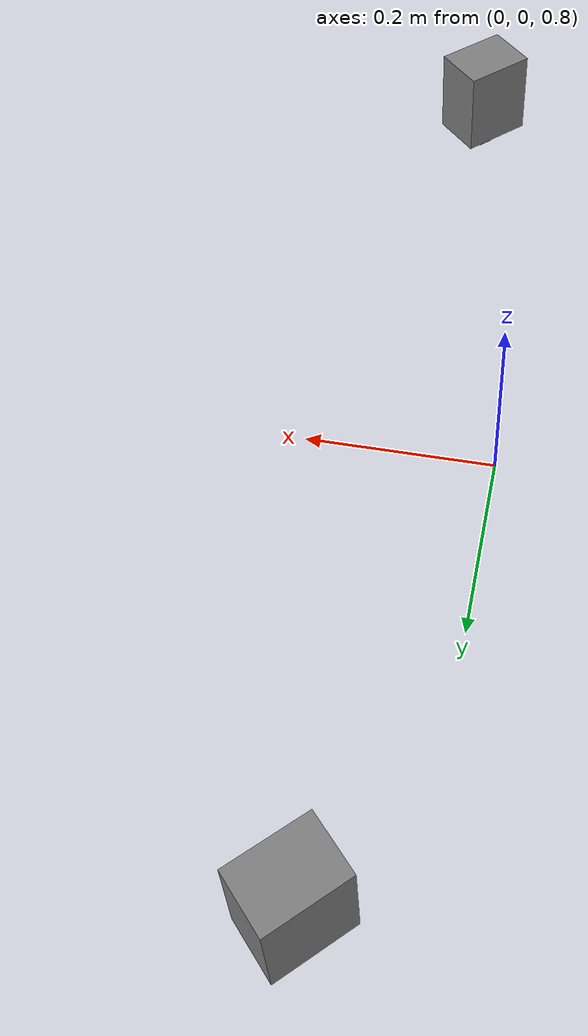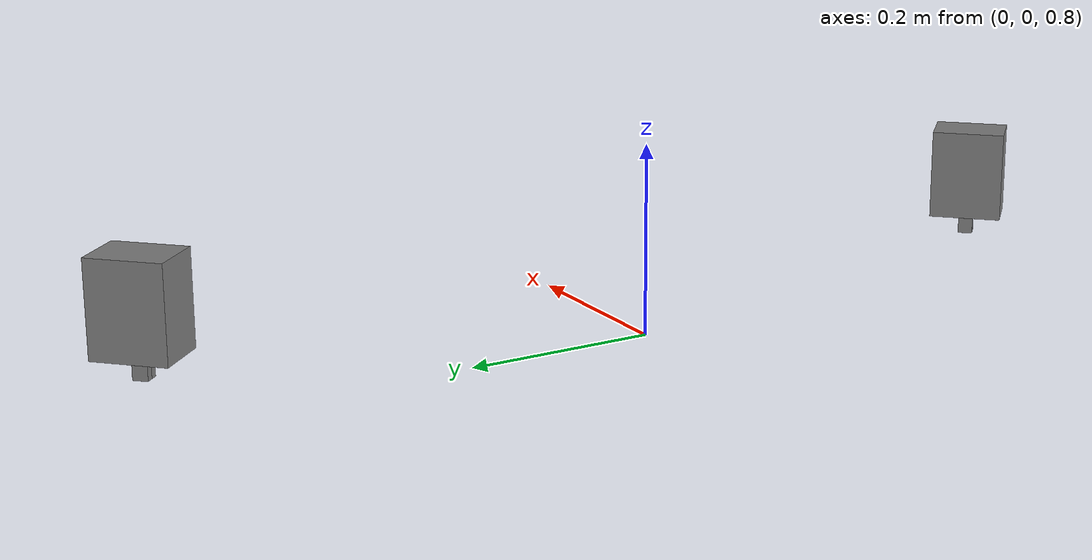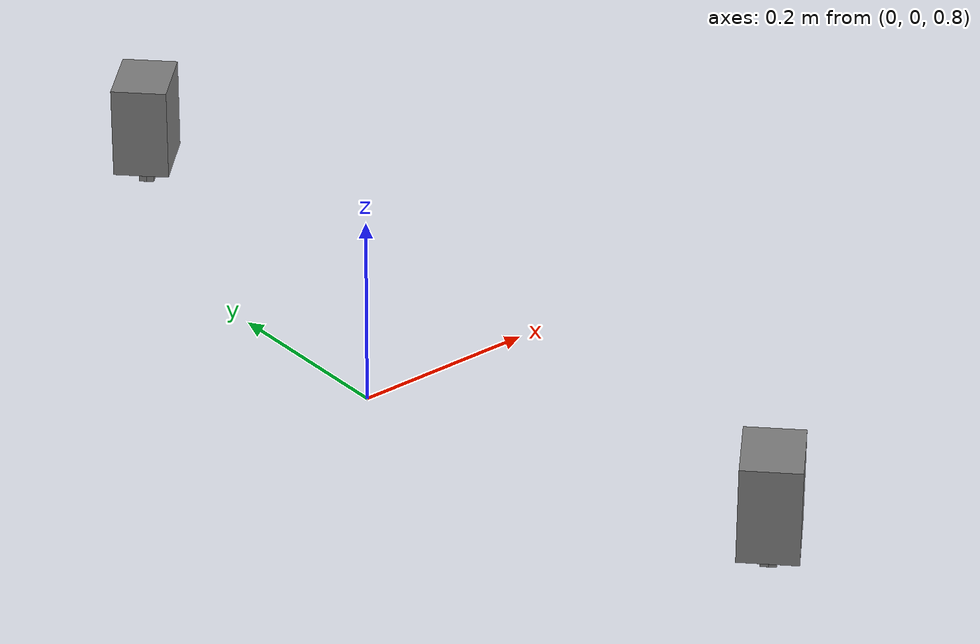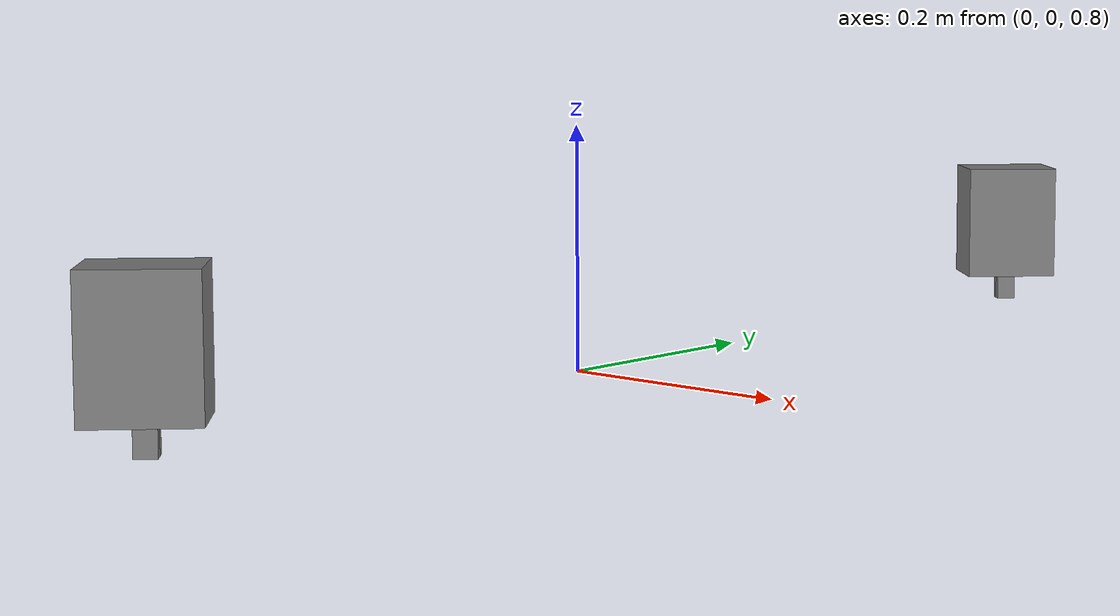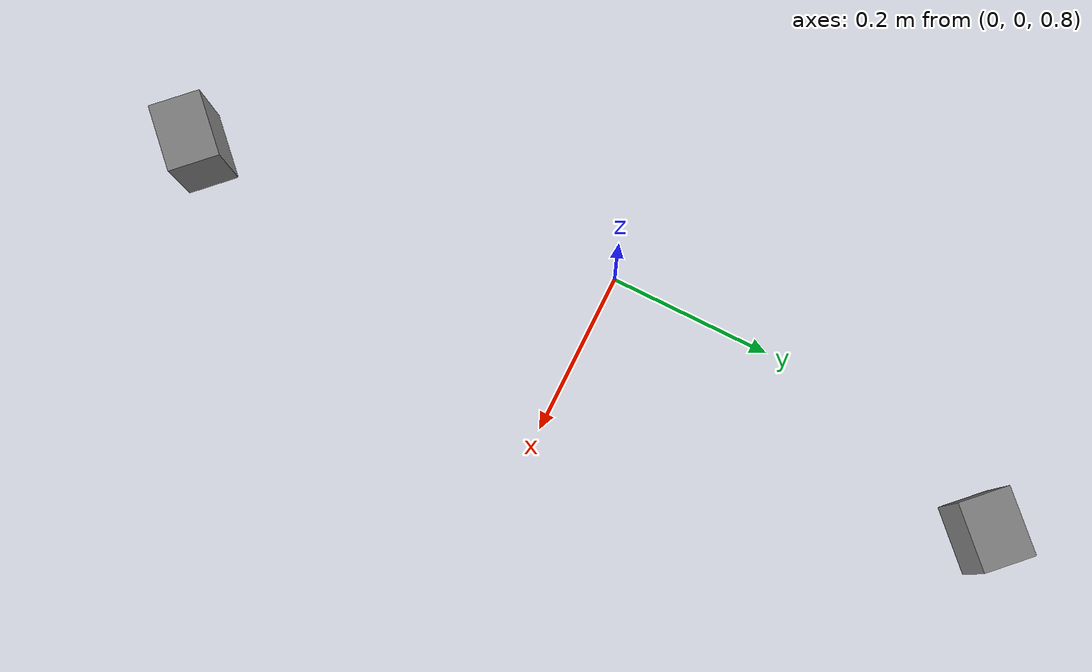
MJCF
<mujoco model="fr3_dual_mjx">
  <compiler angle="radian"/>

  <option integrator="implicitfast" timestep="0.004" iterations="4" ls_iterations="8"/>

  <default>
    <default class="fr3">
      <joint damping="0.21" armature="0.195" frictionloss="1.137"/>
      <position inheritrange="1"/>
    </default>
    <default class="gripper_finger">
      <joint axis="0 1 0" type="slide" range="0 0.04" damping="10" armature="0.1"/>
    </default>
  </default>

  <worldbody>

    <body name="base">

    <!-- ── Left arm  (y = +0.5) ─────────────────────────────────────────── -->
    <body name="left_base" pos="0 0.5 0" childclass="fr3">
      <body name="left_link0">
        <body name="left_link1" pos="0 0 0.333">
          <inertial pos="4.128e-07 -0.0181251 -0.0386036" quat="0.998098 -0.0605364 0.00380499 0.0110109"
            mass="2.92747" diaginertia="0.0239286 0.0227246 0.00610634"/>
          <joint name="left_joint1" axis="0 0 1" range="-2.7437 2.7437"/>
          <body name="left_link2" quat="1 -1 0 0">
            <inertial pos="0.00318289 -0.0743222 0.00881461" quat="0.502599 0.584437 -0.465998 0.434366"
              mass="2.93554" diaginertia="0.0629567 0.0411924 0.0246371"/>
            <joint name="left_joint2" axis="0 0 1" range="-1.7837 1.7837"/>
            <body name="left_link3" pos="0 -0.316 0" quat="1 1 0 0">
              <inertial pos="0.0407016 -0.00482006 -0.0289731" quat="0.921025 -0.244161 0.155272 0.260745"
                mass="2.2449" diaginertia="0.0267409 0.0189869 0.0171587"/>
              <joint name="left_joint3" axis="0 0 1" range="-2.9007 2.9007"/>
              <body name="left_link4" pos="0.0825 0 0" quat="1 1 0 0">
                <inertial pos="-0.0459101 0.0630493 -0.00851879" quat="0.438018 0.803311 0.00937812 0.403414"
                  mass="2.6156" diaginertia="0.05139 0.0372717 0.0160047"/>
                <joint name="left_joint4" axis="0 0 1" range="-3.0421 -0.1518"/>
                <body name="left_link5" pos="-0.0825 0.384 0" quat="1 -1 0 0">
                  <inertial pos="-0.00160396 0.0292536 -0.0972966" quat="0.919031 0.125604 0.0751531 -0.366003"
                    mass="2.32712" diaginertia="0.0579335 0.0449144 0.0130634"/>
                  <joint name="left_joint5" axis="0 0 1" range="-2.8065 2.8065"
                    armature="0.074" frictionloss="0.763"/>
                  <body name="left_link6" quat="1 1 0 0">
                    <inertial pos="0.0597131 -0.0410295 -0.0101693" quat="0.621301 0.552665 0.510011 0.220081"
                      mass="1.81704" diaginertia="0.0175039 0.0161123 0.00193529"/>
                    <joint name="left_joint6" axis="0 0 1" range="0.5445 4.5169"
                      armature="0.074" frictionloss="0.44"/>
                    <body name="left_link7" pos="0.088 0 0" quat="1 1 0 0">
                      <inertial pos="0.00452258 0.00862619 -0.0161633" quat="0.727579 0.0978688 -0.24906 0.63168"
                        mass="0.627143" diaginertia="0.000223836 0.000223642 5.64132e-07"/>
                      <joint name="left_joint7" axis="0 0 1" range="-3.0159 3.0159"
                        armature="0.074" frictionloss="0.248"/>
                      <body name="left_ee" pos="0 0 0.107" quat="-0.9238824 0 0 0.3826765"/>
                      <!-- ── Left Hand (MJX: primitives only) ────────────── -->
                      <body name="left_hand" pos="0 0 0.107" quat="0.9238795 0 0 -0.3826834">
                        <inertial mass="0.73" pos="-0.01 0 0.03" diaginertia="0.001 0.0025 0.0017"/>
                        <geom type="box" size="0.04 0.03 0.05" pos="0 0 0.035"/>
                        <site name="left_tcp" pos="0 0 0.1"/>
                        <body name="left_finger1" pos="0 0 0.0584">
                          <inertial mass="0.015" pos="0 0 0" diaginertia="2.375e-6 2.375e-6 7.5e-7"/>
                          <joint name="left_finger_joint1" class="gripper_finger"/>
                          <geom type="box" size="0.008 0.004 0.03" pos="0 0.004 0.02"/>
                        </body>
                        <body name="left_finger2" pos="0 0 0.0584" quat="0 0 0 1">
                          <inertial mass="0.015" pos="0 0 0" diaginertia="2.375e-6 2.375e-6 7.5e-7"/>
                          <joint name="left_finger_joint2" class="gripper_finger"/>
                          <geom type="box" size="0.008 0.004 0.03" pos="0 0.004 0.02"/>
                        </body>
                      </body>
                    </body>
                  </body>
                </body>
              </body>
            </body>
          </body>
        </body>
      </body>
    </body>

    <!-- ── Right arm  (y = -0.5) ─────────────────────────────────────────── -->
    <body name="right_base" pos="0 -0.5 0" childclass="fr3">
      <body name="right_link0">
        <body name="right_link1" pos="0 0 0.333">
          <inertial pos="4.128e-07 -0.0181251 -0.0386036" quat="0.998098 -0.0605364 0.00380499 0.0110109"
            mass="2.92747" diaginertia="0.0239286 0.0227246 0.00610634"/>
          <joint name="right_joint1" axis="0 0 1" range="-2.7437 2.7437"/>
          <body name="right_link2" quat="1 -1 0 0">
            <inertial pos="0.00318289 -0.0743222 0.00881461" quat="0.502599 0.584437 -0.465998 0.434366"
              mass="2.93554" diaginertia="0.0629567 0.0411924 0.0246371"/>
            <joint name="right_joint2" axis="0 0 1" range="-1.7837 1.7837"/>
            <body name="right_link3" pos="0 -0.316 0" quat="1 1 0 0">
              <inertial pos="0.0407016 -0.00482006 -0.0289731" quat="0.921025 -0.244161 0.155272 0.260745"
                mass="2.2449" diaginertia="0.0267409 0.0189869 0.0171587"/>
              <joint name="right_joint3" axis="0 0 1" range="-2.9007 2.9007"/>
              <body name="right_link4" pos="0.0825 0 0" quat="1 1 0 0">
                <inertial pos="-0.0459101 0.0630493 -0.00851879" quat="0.438018 0.803311 0.00937812 0.403414"
                  mass="2.6156" diaginertia="0.05139 0.0372717 0.0160047"/>
                <joint name="right_joint4" axis="0 0 1" range="-3.0421 -0.1518"/>
                <body name="right_link5" pos="-0.0825 0.384 0" quat="1 -1 0 0">
                  <inertial pos="-0.00160396 0.0292536 -0.0972966" quat="0.919031 0.125604 0.0751531 -0.366003"
                    mass="2.32712" diaginertia="0.0579335 0.0449144 0.0130634"/>
                  <joint name="right_joint5" axis="0 0 1" range="-2.8065 2.8065"
                    armature="0.074" frictionloss="0.763"/>
                  <body name="right_link6" quat="1 1 0 0">
                    <inertial pos="0.0597131 -0.0410295 -0.0101693" quat="0.621301 0.552665 0.510011 0.220081"
                      mass="1.81704" diaginertia="0.0175039 0.0161123 0.00193529"/>
                    <joint name="right_joint6" axis="0 0 1" range="0.5445 4.5169"
                      armature="0.074" frictionloss="0.44"/>
                    <body name="right_link7" pos="0.088 0 0" quat="1 1 0 0">
                      <inertial pos="0.00452258 0.00862619 -0.0161633" quat="0.727579 0.0978688 -0.24906 0.63168"
                        mass="0.627143" diaginertia="0.000223836 0.000223642 5.64132e-07"/>
                      <joint name="right_joint7" axis="0 0 1" range="-3.0159 3.0159"
                        armature="0.074" frictionloss="0.248"/>
                      <body name="right_ee" pos="0 0 0.107" quat="-0.9238824 0 0 0.3826765"/>
                      <!-- ── Right Hand (MJX: primitives only) ───────────── -->
                      <body name="right_hand" pos="0 0 0.107" quat="0.9238795 0 0 -0.3826834">
                        <inertial mass="0.73" pos="-0.01 0 0.03" diaginertia="0.001 0.0025 0.0017"/>
                        <geom type="box" size="0.04 0.03 0.05" pos="0 0 0.035"/>
                        <site name="right_tcp" pos="0 0 0.1"/>
                        <body name="right_finger1" pos="0 0 0.0584">
                          <inertial mass="0.015" pos="0 0 0" diaginertia="2.375e-6 2.375e-6 7.5e-7"/>
                          <joint name="right_finger_joint1" class="gripper_finger"/>
                          <geom type="box" size="0.008 0.004 0.03" pos="0 0.004 0.02"/>
                        </body>
                        <body name="right_finger2" pos="0 0 0.0584" quat="0 0 0 1">
                          <inertial mass="0.015" pos="0 0 0" diaginertia="2.375e-6 2.375e-6 7.5e-7"/>
                          <joint name="right_finger_joint2" class="gripper_finger"/>
                          <geom type="box" size="0.008 0.004 0.03" pos="0 0.004 0.02"/>
                        </body>
                      </body>
                    </body>
                  </body>
                </body>
              </body>
            </body>
          </body>
        </body>
      </body>
    </body>

    </body> <!-- base -->

  </worldbody>

  <actuator>
    <position class="fr3" name="left_joint1"  joint="left_joint1"  kp="4500"/>
    <position class="fr3" name="left_joint2"  joint="left_joint2"  kp="4500"/>
    <position class="fr3" name="left_joint3"  joint="left_joint3"  kp="3500"/>
    <position class="fr3" name="left_joint4"  joint="left_joint4"  kp="3500"/>
    <position class="fr3" name="left_joint5"  joint="left_joint5"  kp="2000"/>
    <position class="fr3" name="left_joint6"  joint="left_joint6"  kp="2000"/>
    <position class="fr3" name="left_joint7"  joint="left_joint7"  kp="2000"/>
    <position class="fr3" name="right_joint1" joint="right_joint1" kp="4500"/>
    <position class="fr3" name="right_joint2" joint="right_joint2" kp="4500"/>
    <position class="fr3" name="right_joint3" joint="right_joint3" kp="3500"/>
    <position class="fr3" name="right_joint4" joint="right_joint4" kp="3500"/>
    <position class="fr3" name="right_joint5" joint="right_joint5" kp="2000"/>
    <position class="fr3" name="right_joint6" joint="right_joint6" kp="2000"/>
    <position class="fr3" name="right_joint7" joint="right_joint7" kp="2000"/>
    <position name="left_gripper"  joint="left_finger_joint1"  kp="350"
              ctrlrange="0 0.04" forcerange="-200 200"/>
    <position name="right_gripper" joint="right_finger_joint1" kp="350"
              ctrlrange="0 0.04" forcerange="-200 200"/>
  </actuator>

  <contact>
    <exclude body1="left_hand"  body2="left_finger1"/>
    <exclude body1="left_hand"  body2="left_finger2"/>
    <exclude body1="right_hand" body2="right_finger1"/>
    <exclude body1="right_hand" body2="right_finger2"/>
  </contact>

  <equality>
    <joint joint1="left_finger_joint1"  joint2="left_finger_joint2"  solimp="0.95 0.99 0.001" solref="0.005 1"/>
    <joint joint1="right_finger_joint1" joint2="right_finger_joint2" solimp="0.95 0.99 0.001" solref="0.005 1"/>
  </equality>

  <keyframe>
    <!-- qpos: 7 left arm + 2 left fingers + 7 right arm + 2 right fingers = 18 -->
    <!-- ctrl:  7 left arm + left gripper + 7 right arm + right gripper = 16 -->
    <key name="home"
      qpos="0 0 0 -1.57079 0 1.57079 -0.7853  0 0  0 0 0 -1.57079 0 1.57079 -0.7853  0 0"
      ctrl="0 0 0 -1.57079 0 1.57079 -0.7853  0    0 0 0 -1.57079 0 1.57079 -0.7853  0"/>
  </keyframe>
</mujoco>
